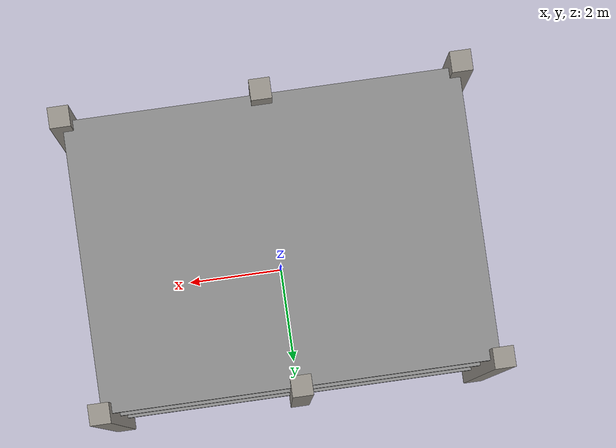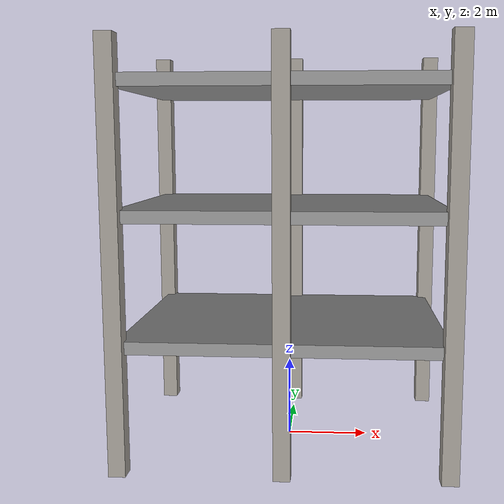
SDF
<?xml version="1.0"?>
<sdf version="1.6">
  <model name="building_frame">
    <static>true</static>

    <link name="column_corner_pp">
      <pose>3.8 2.8 5.0 0 0 0</pose>
      <collision name="collision"><geometry><box><size>0.4 0.4 10.0</size></box></geometry></collision>
      <visual name="visual">
        <geometry><box><size>0.4 0.4 10.0</size></box></geometry>
        <material><ambient>0.55 0.53 0.5 1</ambient><diffuse>0.6 0.58 0.55 1</diffuse></material>
      </visual>
    </link>
    <link name="column_corner_pm">
      <pose>3.8 -2.8 5.0 0 0 0</pose>
      <collision name="collision"><geometry><box><size>0.4 0.4 10.0</size></box></geometry></collision>
      <visual name="visual">
        <geometry><box><size>0.4 0.4 10.0</size></box></geometry>
        <material><ambient>0.55 0.53 0.5 1</ambient><diffuse>0.6 0.58 0.55 1</diffuse></material>
      </visual>
    </link>
    <link name="column_corner_mp">
      <pose>-3.8 2.8 5.0 0 0 0</pose>
      <collision name="collision"><geometry><box><size>0.4 0.4 10.0</size></box></geometry></collision>
      <visual name="visual">
        <geometry><box><size>0.4 0.4 10.0</size></box></geometry>
        <material><ambient>0.55 0.53 0.5 1</ambient><diffuse>0.6 0.58 0.55 1</diffuse></material>
      </visual>
    </link>
    <link name="column_corner_mm">
      <pose>-3.8 -2.8 5.0 0 0 0</pose>
      <collision name="collision"><geometry><box><size>0.4 0.4 10.0</size></box></geometry></collision>
      <visual name="visual">
        <geometry><box><size>0.4 0.4 10.0</size></box></geometry>
        <material><ambient>0.55 0.53 0.5 1</ambient><diffuse>0.6 0.58 0.55 1</diffuse></material>
      </visual>
    </link>
    <link name="column_mid_p">
      <pose>0 2.8 5.0 0 0 0</pose>
      <collision name="collision"><geometry><box><size>0.4 0.4 10.0</size></box></geometry></collision>
      <visual name="visual">
        <geometry><box><size>0.4 0.4 10.0</size></box></geometry>
        <material><ambient>0.55 0.53 0.5 1</ambient><diffuse>0.6 0.58 0.55 1</diffuse></material>
      </visual>
    </link>
    <link name="column_mid_m">
      <pose>0 -2.8 5.0 0 0 0</pose>
      <collision name="collision"><geometry><box><size>0.4 0.4 10.0</size></box></geometry></collision>
      <visual name="visual">
        <geometry><box><size>0.4 0.4 10.0</size></box></geometry>
        <material><ambient>0.55 0.53 0.5 1</ambient><diffuse>0.6 0.58 0.55 1</diffuse></material>
      </visual>
    </link>

    <link name="floor_slab_1">
      <pose>0 0 3.0 0 0 0</pose>
      <collision name="collision"><geometry><box><size>7.6 5.6 0.3</size></box></geometry></collision>
      <visual name="visual">
        <geometry><box><size>7.6 5.6 0.3</size></box></geometry>
        <material><ambient>0.5 0.5 0.5 1</ambient><diffuse>0.55 0.55 0.55 1</diffuse></material>
      </visual>
    </link>
    <link name="floor_slab_2">
      <pose>0 0 6.0 0 0 0</pose>
      <collision name="collision"><geometry><box><size>7.6 5.6 0.3</size></box></geometry></collision>
      <visual name="visual">
        <geometry><box><size>7.6 5.6 0.3</size></box></geometry>
        <material><ambient>0.5 0.5 0.5 1</ambient><diffuse>0.55 0.55 0.55 1</diffuse></material>
      </visual>
    </link>
    <link name="floor_slab_3">
      <pose>0 0 9.0 0 0 0</pose>
      <collision name="collision"><geometry><box><size>7.6 5.6 0.3</size></box></geometry></collision>
      <visual name="visual">
        <geometry><box><size>7.6 5.6 0.3</size></box></geometry>
        <material><ambient>0.5 0.5 0.5 1</ambient><diffuse>0.55 0.55 0.55 1</diffuse></material>
      </visual>
    </link>
  </model>
</sdf>
